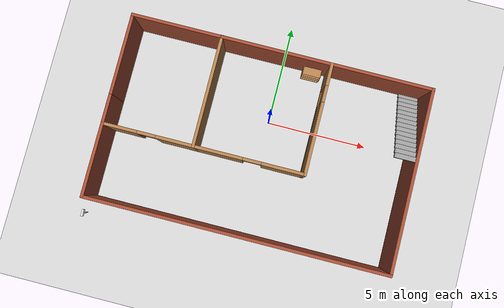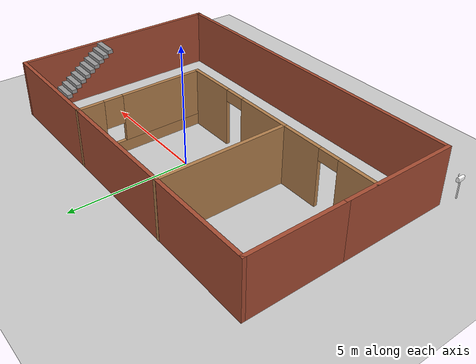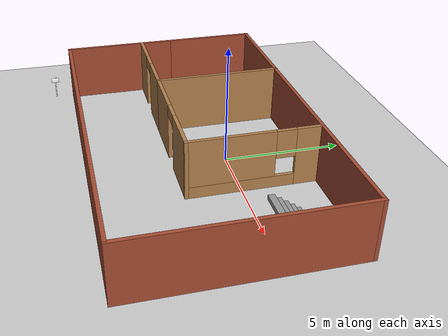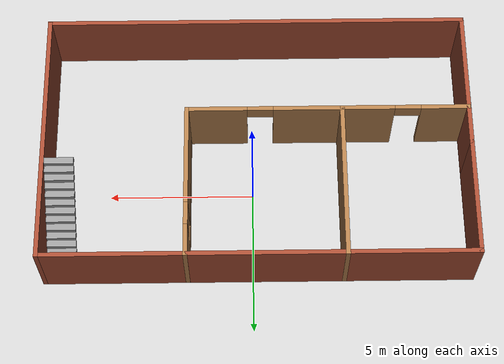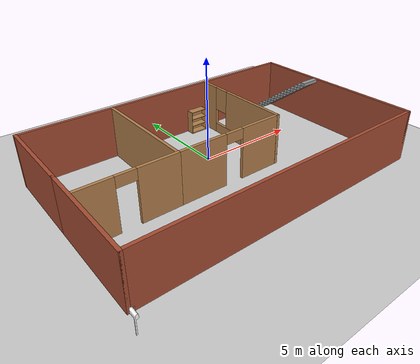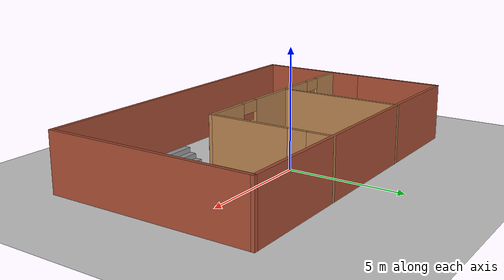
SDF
<sdf version="1.7">
 <world name="default">
  <light name="sun" type="directional">
   <pose>0 0 10 0 -0 0</pose>
   <diffuse>0.8 0.8 0.8 1</diffuse>
   <specular>0.2 0.2 0.2 1</specular>
   <attenuation>
    <range>1000</range>
    <constant>0.9</constant>
    <linear>0.01</linear>
    <quadratic>0.001</quadratic>
   </attenuation>
   <direction>-0.5 0.1 -0.9</direction>
   <spot><inner_angle>0</inner_angle><outer_angle>0</outer_angle><falloff>0</falloff></spot>
  </light>
  <model name="ground_plane">
   <static>1</static>
   <link name="link">
    <collision name="collision">
     <geometry><plane><normal>0 0 1</normal><size>100 100</size></plane></geometry>
     <surface><friction><ode><mu>100</mu><mu2>50</mu2></ode></friction></surface>
    </collision>
    <visual name="visual">
     <cast_shadows>0</cast_shadows>
     <geometry><plane><normal>0 0 1</normal><size>100 100</size></plane></geometry>
     <material>
      <script><uri>file://media/materials/scripts/gazebo.material</uri><name>Gazebo/Grey</name></script>
     </material>
    </visual>
   </link>
  </model>
  <gravity>0 0 -9.8</gravity>
  <magnetic_field>6e-06 2.3e-05 -4.2e-05</magnetic_field>
  <atmosphere type="adiabatic"/>
  <physics type="ode">
   <max_step_size>0.001</max_step_size>
   <real_time_factor>1</real_time_factor>
   <real_time_update_rate>1000</real_time_update_rate>
  </physics>
  <scene><ambient>0.4 0.4 0.4 1</ambient><background>0.7 0.7 0.7 1</background><shadows>1</shadows></scene>
  <audio><device>default</device></audio>
  <spherical_coordinates>
   <surface_model>EARTH_WGS84</surface_model>
   <latitude_deg>0</latitude_deg>
   <longitude_deg>0</longitude_deg>
   <elevation>0</elevation>
   <heading_deg>0</heading_deg>
  </spherical_coordinates>
  <model name="my_ghar">
   <pose>-0.177857 -1.27642 0 0 -0 0</pose>
   <link name="Stairs_0">
    <visual name="Stairs_0_Visual_0">
     <pose>6.72319 4.26822 0.083333 0 -0 0</pose>
     <geometry><box><size>1 0.233333 0.166667</size></box></geometry>
     <material>
      <script><uri>file://media/materials/scripts/gazebo.material</uri><name>Gazebo/Grey</name></script>
      <ambient>1 1 1 1</ambient>
     </material>
     <meta><layer>0</layer></meta>
    </visual>
    <collision name="Stairs_0_Collision_0">
     <geometry><box><size>1 0.233333 0.166667</size></box></geometry>
     <pose>6.72319 4.26822 0.083333 0 -0 0</pose>
    </collision>
    <visual name="Stairs_0_Visual_1">
     <pose>6.72319 4.03488 0.25 0 -0 0</pose>
     <geometry><box><size>1 0.233333 0.166667</size></box></geometry>
     <material>
      <script><uri>file://media/materials/scripts/gazebo.material</uri><name>Gazebo/Grey</name></script>
      <ambient>1 1 1 1</ambient>
     </material>
     <meta><layer>0</layer></meta>
    </visual>
    <collision name="Stairs_0_Collision_1">
     <geometry><box><size>1 0.233333 0.166667</size></box></geometry>
     <pose>6.72319 4.03488 0.25 0 -0 0</pose>
    </collision>
    <visual name="Stairs_0_Visual_2">
     <pose>6.72319 3.80155 0.416667 0 -0 0</pose>
     <geometry><box><size>1 0.233333 0.166667</size></box></geometry>
     <material>
      <script><uri>file://media/materials/scripts/gazebo.material</uri><name>Gazebo/Grey</name></script>
      <ambient>1 1 1 1</ambient>
     </material>
     <meta><layer>0</layer></meta>
    </visual>
    <collision name="Stairs_0_Collision_2">
     <geometry><box><size>1 0.233333 0.166667</size></box></geometry>
     <pose>6.72319 3.80155 0.416667 0 -0 0</pose>
    </collision>
    <visual name="Stairs_0_Visual_3">
     <pose>6.72319 3.56822 0.583333 0 -0 0</pose>
     <geometry><box><size>1 0.233333 0.166667</size></box></geometry>
     <material>
      <script><uri>file://media/materials/scripts/gazebo.material</uri><name>Gazebo/Grey</name></script>
      <ambient>1 1 1 1</ambient>
     </material>
     <meta><layer>0</layer></meta>
    </visual>
    <collision name="Stairs_0_Collision_3">
     <geometry><box><size>1 0.233333 0.166667</size></box></geometry>
     <pose>6.72319 3.56822 0.583333 0 -0 0</pose>
    </collision>
    <visual name="Stairs_0_Visual_4">
     <pose>6.72319 3.33488 0.75 0 -0 0</pose>
     <geometry><box><size>1 0.233333 0.166667</size></box></geometry>
     <material>
      <script><uri>file://media/materials/scripts/gazebo.material</uri><name>Gazebo/Grey</name></script>
      <ambient>1 1 1 1</ambient>
     </material>
     <meta><layer>0</layer></meta>
    </visual>
    <collision name="Stairs_0_Collision_4">
     <geometry><box><size>1 0.233333 0.166667</size></box></geometry>
     <pose>6.72319 3.33488 0.75 0 -0 0</pose>
    </collision>
    <visual name="Stairs_0_Visual_5">
     <pose>6.72319 3.10155 0.916667 0 -0 0</pose>
     <geometry><box><size>1 0.233333 0.166667</size></box></geometry>
     <material>
      <script><uri>file://media/materials/scripts/gazebo.material</uri><name>Gazebo/Grey</name></script>
      <ambient>1 1 1 1</ambient>
     </material>
     <meta><layer>0</layer></meta>
    </visual>
    <collision name="Stairs_0_Collision_5">
     <geometry><box><size>1 0.233333 0.166667</size></box></geometry>
     <pose>6.72319 3.10155 0.916667 0 -0 0</pose>
    </collision>
    <visual name="Stairs_0_Visual_6">
     <pose>6.72319 2.86822 1.08333 0 -0 0</pose>
     <geometry><box><size>1 0.233333 0.166667</size></box></geometry>
     <material>
      <script><uri>file://media/materials/scripts/gazebo.material</uri><name>Gazebo/Grey</name></script>
      <ambient>1 1 1 1</ambient>
     </material>
     <meta><layer>0</layer></meta>
    </visual>
    <collision name="Stairs_0_Collision_6">
     <geometry><box><size>1 0.233333 0.166667</size></box></geometry>
     <pose>6.72319 2.86822 1.08333 0 -0 0</pose>
    </collision>
    <visual name="Stairs_0_Visual_7">
     <pose>6.72319 2.63488 1.25 0 -0 0</pose>
     <geometry><box><size>1 0.233333 0.166667</size></box></geometry>
     <material>
      <script><uri>file://media/materials/scripts/gazebo.material</uri><name>Gazebo/Grey</name></script>
      <ambient>1 1 1 1</ambient>
     </material>
     <meta><layer>0</layer></meta>
    </visual>
    <collision name="Stairs_0_Collision_7">
     <geometry><box><size>1 0.233333 0.166667</size></box></geometry>
     <pose>6.72319 2.63488 1.25 0 -0 0</pose>
    </collision>
    <visual name="Stairs_0_Visual_8">
     <pose>6.72319 2.40155 1.41667 0 -0 0</pose>
     <geometry><box><size>1 0.233333 0.166667</size></box></geometry>
     <material>
      <script><uri>file://media/materials/scripts/gazebo.material</uri><name>Gazebo/Grey</name></script>
      <ambient>1 1 1 1</ambient>
     </material>
     <meta><layer>0</layer></meta>
    </visual>
    <collision name="Stairs_0_Collision_8">
     <geometry><box><size>1 0.233333 0.166667</size></box></geometry>
     <pose>6.72319 2.40155 1.41667 0 -0 0</pose>
    </collision>
    <visual name="Stairs_0_Visual_9">
     <pose>6.72319 2.16822 1.58333 0 -0 0</pose>
     <geometry><box><size>1 0.233333 0.166667</size></box></geometry>
     <material>
      <script><uri>file://media/materials/scripts/gazebo.material</uri><name>Gazebo/Grey</name></script>
      <ambient>1 1 1 1</ambient>
     </material>
     <meta><layer>0</layer></meta>
    </visual>
    <collision name="Stairs_0_Collision_9">
     <geometry><box><size>1 0.233333 0.166667</size></box></geometry>
     <pose>6.72319 2.16822 1.58333 0 -0 0</pose>
    </collision>
    <visual name="Stairs_0_Visual_10">
     <pose>6.72319 1.93488 1.75 0 -0 0</pose>
     <geometry><box><size>1 0.233333 0.166667</size></box></geometry>
     <material>
      <script><uri>file://media/materials/scripts/gazebo.material</uri><name>Gazebo/Grey</name></script>
      <ambient>1 1 1 1</ambient>
     </material>
     <meta><layer>0</layer></meta>
    </visual>
    <collision name="Stairs_0_Collision_10">
     <geometry><box><size>1 0.233333 0.166667</size></box></geometry>
     <pose>6.72319 1.93488 1.75 0 -0 0</pose>
    </collision>
    <visual name="Stairs_0_Visual_11">
     <pose>6.72319 1.70155 1.91667 0 -0 0</pose>
     <geometry><box><size>1 0.233333 0.166667</size></box></geometry>
     <material>
      <script><uri>file://media/materials/scripts/gazebo.material</uri><name>Gazebo/Grey</name></script>
      <ambient>1 1 1 1</ambient>
     </material>
     <meta><layer>0</layer></meta>
    </visual>
    <collision name="Stairs_0_Collision_11">
     <geometry><box><size>1 0.233333 0.166667</size></box></geometry>
     <pose>6.72319 1.70155 1.91667 0 -0 0</pose>
    </collision>
    <visual name="Stairs_0_Visual_12">
     <pose>6.72319 1.46822 2.08333 0 -0 0</pose>
     <geometry><box><size>1 0.233333 0.166667</size></box></geometry>
     <material>
      <script><uri>file://media/materials/scripts/gazebo.material</uri><name>Gazebo/Grey</name></script>
      <ambient>1 1 1 1</ambient>
     </material>
     <meta><layer>0</layer></meta>
    </visual>
    <collision name="Stairs_0_Collision_12">
     <geometry><box><size>1 0.233333 0.166667</size></box></geometry>
     <pose>6.72319 1.46822 2.08333 0 -0 0</pose>
    </collision>
    <visual name="Stairs_0_Visual_13">
     <pose>6.72319 1.23488 2.25 0 -0 0</pose>
     <geometry><box><size>1 0.233333 0.166667</size></box></geometry>
     <material>
      <script><uri>file://media/materials/scripts/gazebo.material</uri><name>Gazebo/Grey</name></script>
      <ambient>1 1 1 1</ambient>
     </material>
     <meta><layer>0</layer></meta>
    </visual>
    <collision name="Stairs_0_Collision_13">
     <geometry><box><size>1 0.233333 0.166667</size></box></geometry>
     <pose>6.72319 1.23488 2.25 0 -0 0</pose>
    </collision>
    <visual name="Stairs_0_Visual_14">
     <pose>6.72319 1.00155 2.41667 0 -0 0</pose>
     <geometry><box><size>1 0.233333 0.166667</size></box></geometry>
     <material>
      <script><uri>file://media/materials/scripts/gazebo.material</uri><name>Gazebo/Grey</name></script>
      <ambient>1 1 1 1</ambient>
     </material>
     <meta><layer>0</layer></meta>
    </visual>
    <collision name="Stairs_0_Collision_14">
     <geometry><box><size>1 0.233333 0.166667</size></box></geometry>
     <pose>6.72319 1.00155 2.41667 0 -0 0</pose>
    </collision>
   </link>
   <link name="Wall_1">
    <collision name="Wall_1_Collision">
     <geometry><box><size>5 0.15 2.5</size></box></geometry>
     <pose>0 0 1.25 0 -0 0</pose>
    </collision>
    <visual name="Wall_1_Visual">
     <pose>0 0 1.25 0 -0 0</pose>
     <geometry><box><size>5 0.15 2.5</size></box></geometry>
     <material>
      <script><uri>file://media/materials/scripts/gazebo.material</uri><name>Gazebo/Bricks</name></script>
      <ambient>0.435294 0.796078 0.67451 1</ambient>
     </material>
     <meta><layer>0</layer></meta>
    </visual>
    <pose>-7.3 -2.00362 0 0 -0 -1.5708</pose>
   </link>
   <link name="Wall_11">
    <pose>2.42077 1.74992 0 0 -0 -1.5708</pose>
    <visual name="Wall_11_Visual_0">
     <pose>-2.18898 0 1.25 0 -0 0</pose>
     <geometry><box><size>1.12204 0.15 2.5</size></box></geometry>
     <material>
      <script><uri>file://media/materials/scripts/gazebo.material</uri><name>Gazebo/Wood</name></script>
      <ambient>1 1 1 1</ambient>
     </material>
     <meta><layer>0</layer></meta>
    </visual>
    <collision name="Wall_11_Collision_0">
     <geometry><box><size>1.12204 0.15 2.5</size></box></geometry>
     <pose>-2.18898 0 1.25 0 -0 0</pose>
    </collision>
    <visual name="Wall_11_Visual_1">
     <pose>0.561021 0 0.25 0 -0 0</pose>
     <geometry><box><size>4.37796 0.15 0.5</size></box></geometry>
     <material>
      <script><uri>file://media/materials/scripts/gazebo.material</uri><name>Gazebo/Wood</name></script>
      <ambient>1 1 1 1</ambient>
     </material>
     <meta><layer>0</layer></meta>
    </visual>
    <collision name="Wall_11_Collision_1">
     <geometry><box><size>4.37796 0.15 0.5</size></box></geometry>
     <pose>0.561021 0 0.25 0 -0 0</pose>
    </collision>
    <visual name="Wall_11_Visual_2">
     <pose>0.961021 0 1.5 0 -0 0</pose>
     <geometry><box><size>3.57796 0.15 2</size></box></geometry>
     <material>
      <script><uri>file://media/materials/scripts/gazebo.material</uri><name>Gazebo/Wood</name></script>
      <ambient>1 1 1 1</ambient>
     </material>
     <meta><layer>0</layer></meta>
    </visual>
    <collision name="Wall_11_Collision_2">
     <geometry><box><size>3.57796 0.15 2</size></box></geometry>
     <pose>0.961021 0 1.5 0 -0 0</pose>
    </collision>
    <visual name="Wall_11_Visual_3">
     <pose>-1.22796 0 1.9 0 -0 0</pose>
     <geometry><box><size>0.8 0.15 1.2</size></box></geometry>
     <material>
      <script><uri>file://media/materials/scripts/gazebo.material</uri><name>Gazebo/Wood</name></script>
      <ambient>1 1 1 1</ambient>
     </material>
     <meta><layer>0</layer></meta>
    </visual>
    <collision name="Wall_11_Collision_3">
     <geometry><box><size>0.8 0.15 1.2</size></box></geometry>
     <pose>-1.22796 0 1.9 0 -0 0</pose>
    </collision>
   </link>
   <link name="Wall_13">
    <pose>-0.254226 -0.920709 0 0 -0 3.14159</pose>
    <visual name="Wall_13_Visual_0">
     <pose>-1.67197 0 1.25 0 -0 0</pose>
     <geometry><box><size>2.15606 0.15 2.5</size></box></geometry>
     <material>
      <script><uri>file://media/materials/scripts/gazebo.material</uri><name>Gazebo/Wood</name></script>
      <ambient>1 1 1 1</ambient>
     </material>
     <meta><layer>0</layer></meta>
    </visual>
    <collision name="Wall_13_Collision_0">
     <geometry><box><size>2.15606 0.15 2.5</size></box></geometry>
     <pose>-1.67197 0 1.25 0 -0 0</pose>
    </collision>
    <visual name="Wall_13_Visual_1">
     <pose>1.52803 0 1.25 0 -0 0</pose>
     <geometry><box><size>2.44394 0.15 2.5</size></box></geometry>
     <material>
      <script><uri>file://media/materials/scripts/gazebo.material</uri><name>Gazebo/Wood</name></script>
      <ambient>1 1 1 1</ambient>
     </material>
     <meta><layer>0</layer></meta>
    </visual>
    <collision name="Wall_13_Collision_1">
     <geometry><box><size>2.44394 0.15 2.5</size></box></geometry>
     <pose>1.52803 0 1.25 0 -0 0</pose>
    </collision>
    <visual name="Wall_13_Visual_2">
     <pose>-0.143938 0 2.25 0 -0 0</pose>
     <geometry><box><size>0.9 0.15 0.5</size></box></geometry>
     <material>
      <script><uri>file://media/materials/scripts/gazebo.material</uri><name>Gazebo/Wood</name></script>
      <ambient>1 1 1 1</ambient>
     </material>
     <meta><layer>0</layer></meta>
    </visual>
    <collision name="Wall_13_Collision_2">
     <geometry><box><size>0.9 0.15 0.5</size></box></geometry>
     <pose>-0.143938 0 2.25 0 -0 0</pose>
    </collision>
   </link>
   <link name="Wall_2">
    <collision name="Wall_2_Collision">
     <geometry><box><size>14.75 0.15 2.5</size></box></geometry>
     <pose>0 0 1.25 0 -0 0</pose>
    </collision>
    <visual name="Wall_2_Visual">
     <pose>0 0 1.25 0 -0 0</pose>
     <geometry><box><size>14.75 0.15 2.5</size></box></geometry>
     <material>
      <script><uri>file://media/materials/scripts/gazebo.material</uri><name>Gazebo/Bricks</name></script>
      <ambient>0.435294 0.796078 0.67451 1</ambient>
     </material>
     <meta><layer>0</layer></meta>
    </visual>
    <pose>-0 -4.42862 0 0 -0 0</pose>
   </link>
   <link name="Wall_3">
    <collision name="Wall_3_Collision">
     <geometry><box><size>9 0.15 2.5</size></box></geometry>
     <pose>0 0 1.25 0 -0 0</pose>
    </collision>
    <visual name="Wall_3_Visual">
     <pose>0 0 1.25 0 -0 0</pose>
     <geometry><box><size>9 0.15 2.5</size></box></geometry>
     <material>
      <script><uri>file://media/materials/scripts/gazebo.material</uri><name>Gazebo/Bricks</name></script>
      <ambient>0.435294 0.796078 0.67451 1</ambient>
     </material>
     <meta><layer>0</layer></meta>
    </visual>
    <pose>7.3 -0.003619 0 0 -0 1.5708</pose>
   </link>
   <link name="Wall_4">
    <collision name="Wall_4_Collision">
     <geometry><box><size>14.75 0.15 2.5</size></box></geometry>
     <pose>0 0 1.25 0 -0 0</pose>
    </collision>
    <visual name="Wall_4_Visual">
     <pose>0 0 1.25 0 -0 0</pose>
     <geometry><box><size>14.75 0.15 2.5</size></box></geometry>
     <material>
      <script><uri>file://media/materials/scripts/gazebo.material</uri><name>Gazebo/Bricks</name></script>
      <ambient>0.435294 0.796078 0.67451 1</ambient>
     </material>
     <meta><layer>0</layer></meta>
    </visual>
    <pose>-0 4.42138 0 0 -0 3.14159</pose>
   </link>
   <link name="Wall_5">
    <collision name="Wall_5_Collision">
     <geometry><box><size>4.15 0.15 2.5</size></box></geometry>
     <pose>0 0 1.25 0 -0 0</pose>
    </collision>
    <visual name="Wall_5_Visual">
     <pose>0 0 1.25 0 -0 0</pose>
     <geometry><box><size>4.15 0.15 2.5</size></box></geometry>
     <material>
      <script><uri>file://media/materials/scripts/gazebo.material</uri><name>Gazebo/Bricks</name></script>
      <ambient>0.435294 0.796078 0.67451 1</ambient>
     </material>
     <meta><layer>0</layer></meta>
    </visual>
    <pose>-7.3 2.42138 0 0 -0 -1.5708</pose>
   </link>
   <link name="Wall_7">
    <collision name="Wall_7_Collision">
     <geometry><box><size>5.5 0.15 2.5</size></box></geometry>
     <pose>0 0 1.25 0 -0 0</pose>
    </collision>
    <visual name="Wall_7_Visual">
     <pose>0 0 1.25 0 -0 0</pose>
     <geometry><box><size>5.5 0.15 2.5</size></box></geometry>
     <material>
      <script><uri>file://media/materials/scripts/gazebo.material</uri><name>Gazebo/Wood</name></script>
      <ambient>1 1 1 1</ambient>
     </material>
     <meta><layer>0</layer></meta>
    </visual>
    <pose>-2.93358 1.75362 0 0 -0 1.5708</pose>
   </link>
   <link name="Wall_9">
    <pose>-5.10858 -0.921381 0 0 -0 3.14159</pose>
    <visual name="Wall_9_Visual_0">
     <pose>-1.30309 0 1.25 0 -0 0</pose>
     <geometry><box><size>1.89383 0.15 2.5</size></box></geometry>
     <material>
      <script><uri>file://media/materials/scripts/gazebo.material</uri><name>Gazebo/Wood</name></script>
      <ambient>1 1 1 1</ambient>
     </material>
     <meta><layer>0</layer></meta>
    </visual>
    <collision name="Wall_9_Collision_0">
     <geometry><box><size>1.89383 0.15 2.5</size></box></geometry>
     <pose>-1.30309 0 1.25 0 -0 0</pose>
    </collision>
    <visual name="Wall_9_Visual_1">
     <pose>1.39691 0 1.25 0 -0 0</pose>
     <geometry><box><size>1.70617 0.15 2.5</size></box></geometry>
     <material>
      <script><uri>file://media/materials/scripts/gazebo.material</uri><name>Gazebo/Wood</name></script>
      <ambient>1 1 1 1</ambient>
     </material>
     <meta><layer>0</layer></meta>
    </visual>
    <collision name="Wall_9_Collision_1">
     <geometry><box><size>1.70617 0.15 2.5</size></box></geometry>
     <pose>1.39691 0 1.25 0 -0 0</pose>
    </collision>
    <visual name="Wall_9_Visual_2">
     <pose>0.093831 0 2.25 0 -0 0</pose>
     <geometry><box><size>0.9 0.15 0.5</size></box></geometry>
     <material>
      <script><uri>file://media/materials/scripts/gazebo.material</uri><name>Gazebo/Wood</name></script>
      <ambient>1 1 1 1</ambient>
     </material>
     <meta><layer>0</layer></meta>
    </visual>
    <collision name="Wall_9_Collision_2">
     <geometry><box><size>0.9 0.15 0.5</size></box></geometry>
     <pose>0.093831 0 2.25 0 -0 0</pose>
    </collision>
   </link>
   <static>1</static>
  </model>
  <model name="bookshelf">
   <static>1</static>
   <link name="link">
    <inertial><mass>1</mass></inertial>
    <collision name="back">
     <pose>0 0.005 0.6 0 -0 0</pose>
     <geometry><box><size>0.9 0.01 1.2</size></box></geometry>
    </collision>
    <visual name="visual1">
     <pose>0 0.005 0.6 0 -0 0</pose>
     <geometry><box><size>0.9 0.01 1.2</size></box></geometry>
     <material>
      <script><uri>file://media/materials/scripts/gazebo.material</uri><name>Gazebo/Wood</name></script>
     </material>
    </visual>
    <collision name="left_side">
     <pose>0.45 -0.195 0.6 0 -0 0</pose>
     <geometry><box><size>0.02 0.4 1.2</size></box></geometry>
    </collision>
    <visual name="visual2">
     <pose>0.45 -0.195 0.6 0 -0 0</pose>
     <geometry><box><size>0.02 0.4 1.2</size></box></geometry>
     <material>
      <script><uri>file://media/materials/scripts/gazebo.material</uri><name>Gazebo/Wood</name></script>
     </material>
    </visual>
    <collision name="right_side">
     <pose>-0.45 -0.195 0.6 0 -0 0</pose>
     <geometry><box><size>0.02 0.4 1.2</size></box></geometry>
    </collision>
    <visual name="visual3">
     <pose>-0.45 -0.195 0.6 0 -0 0</pose>
     <geometry><box><size>0.02 0.4 1.2</size></box></geometry>
     <material>
      <script><uri>file://media/materials/scripts/gazebo.material</uri><name>Gazebo/Wood</name></script>
     </material>
    </visual>
    <collision name="bottom">
     <pose>0 -0.195 0.03 0 -0 0</pose>
     <geometry><box><size>0.88 0.4 0.06</size></box></geometry>
    </collision>
    <visual name="visual4">
     <pose>0 -0.195 0.03 0 -0 0</pose>
     <geometry><box><size>0.88 0.4 0.06</size></box></geometry>
     <material>
      <script><uri>file://media/materials/scripts/gazebo.material</uri><name>Gazebo/Wood</name></script>
     </material>
    </visual>
    <collision name="top">
     <pose>0 -0.195 1.19 0 -0 0</pose>
     <geometry><box><size>0.88 0.4 0.02</size></box></geometry>
    </collision>
    <visual name="visual5">
     <pose>0 -0.195 1.19 0 -0 0</pose>
     <geometry><box><size>0.88 0.4 0.02</size></box></geometry>
     <material>
      <script><uri>file://media/materials/scripts/gazebo.material</uri><name>Gazebo/Wood</name></script>
     </material>
    </visual>
    <collision name="low_shelf">
     <pose>0 -0.195 0.43 0 -0 0</pose>
     <geometry><box><size>0.88 0.4 0.02</size></box></geometry>
    </collision>
    <visual name="visual6">
     <pose>0 -0.195 0.43 0 -0 0</pose>
     <geometry><box><size>0.88 0.4 0.02</size></box></geometry>
     <material>
      <script><uri>file://media/materials/scripts/gazebo.material</uri><name>Gazebo/Wood</name></script>
     </material>
    </visual>
    <collision name="high_shelf">
     <pose>0 -0.195 0.8 0 -0 0</pose>
     <geometry><box><size>0.88 0.4 0.02</size></box></geometry>
    </collision>
    <visual name="visual7">
     <pose>0 -0.195 0.8 0 -0 0</pose>
     <geometry><box><size>0.88 0.4 0.02</size></box></geometry>
     <material>
      <script><uri>file://media/materials/scripts/gazebo.material</uri><name>Gazebo/Wood</name></script>
     </material>
    </visual>
   </link>
   <pose>1.47126 3.04335 0 0 -0 0</pose>
  </model>
  <model name="Mailbox">
   <link name="link">
    <collision name="collision">
     <geometry><mesh><uri>model://mailbox/meshes/mailbox.dae</uri></mesh></geometry>
    </collision>
    <visual name="visual">
     <geometry><mesh><uri>model://mailbox/meshes/mailbox.dae</uri></mesh></geometry>
     <material>
      <script>
       <uri>model://mailbox/materials/scripts</uri>
       <uri>model://mailbox/materials/textures</uri>
       <name>Mailbox/Diffuse</name>
      </script>
     </material>
    </visual>
    <inertial>
     <inertia><ixx>1</ixx><ixy>0</ixy><ixz>0</ixz><iyy>1</iyy><iyz>0</iyz><izz>1</izz></inertia>
     <mass>1</mass>
    </inertial>
   </link>
   <pose>-7.67239 -6.57222 -9e-06 -8e-06 -5e-06 0</pose>
  </model>
 </world>
</sdf>
